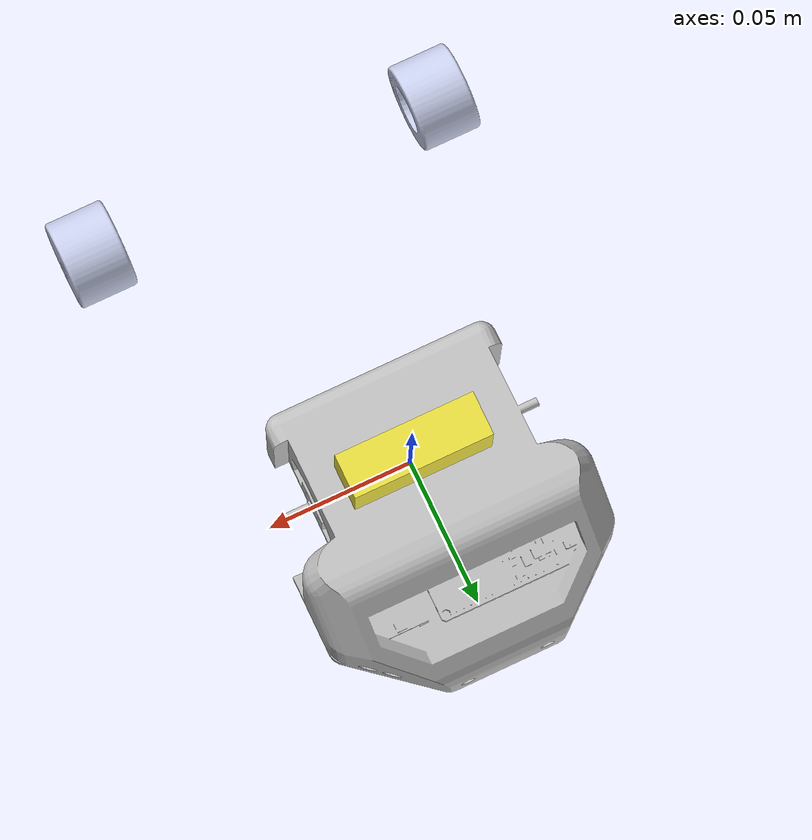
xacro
<?xml version="1.0"?>
<robot name="RMD1" xmlns:xacro="http://www.ros.org/wiki/xacro">
	<xacro:macro name="InerciaRueda">
	 <inertial>
		<origin
		xyz="1.9755E-05 -5.937E-05 0.010582"
		rpy="0 0 0" />
	   	<mass value="0.010874" />
		<inertia
		ixx="1.1208E-06"
		ixy="4.6507E-10"
		ixz="-7.7246E-10"
		iyy="1.1207E-06"
		iyz="-6.5341E-10"
		izz="1.5186E-06" />
	 </inertial>
	</xacro:macro>

  <!-- ::::::::::::::: ENLACES Y JUNTAS VISUALES DEL ROBOT :::::::::::::::-->
  <link
    name="base_link">
    <inertial>
      <!--origin
        xyz="0.00220064762445978 0.00632001835962821 0.0613684966384051" No funciona, se debe intercambiar el eje y por z -->
      <origin
        xyz="0.00220064762445978 -0.0613684966384051 0.00632001835962821"
        rpy="1.5708 0 0" />
      <mass
        value="0.187551651600364" />
      <inertia
        ixx="0.000236010414569773"
        ixy="-1.68515145672754E-09"
        ixz="1.38056969191708E-09"
        iyy="0.000507898725164958"
        iyz="-1.00879770741965E-05"
        izz="0.000308347840630502" />

    </inertial>
    <visual>
      <origin
        xyz="0 0 0"
        rpy="0 0 0" />
      <geometry>
        <mesh
          filename="package://RMD/meshes/base_link.STL" />
      </geometry>
      <material
        name="">
        <color
          rgba="0.752941176470588 0.752941176470588 0.752941176470588 1" />
      </material>
    </visual>
    <collision>
      <origin
        xyz="0 0 0"
        rpy="0 0 0" />
      <geometry>
        <mesh
          filename="package://RMD/meshes/base_link.STL" />
      </geometry>
    </collision>
  </link>
  <link
    name="Rueda_Izq">
    <xacro:InerciaRueda/>
    <visual>
      <origin
        xyz="0 0 0"
        rpy="0 0 0" />
      <geometry>
        <mesh
          filename="package://RMD/meshes/Rueda_Izq.STL" />
      </geometry>
      <material
        name="">
        <color
          rgba="0.79216 0.81961 0.93333 1" />
      </material>
    </visual>
    <collision>
      <origin
        xyz="0 0 0"
        rpy="0 0 0" />
      <geometry>
        <mesh
          filename="package://RMD/meshes/Rueda_Izq.STL" />
      </geometry>
    </collision>
  </link>
  <joint
    name="Motor_Izq"
    type="continuous">
    <origin
      xyz="-0.049569 -0.10759 -0.0043137"
      rpy="1.5708 -0.86735 -1.5708" />
    <parent
      link="base_link" />
    <child
      link="Rueda_Izq" />
    <axis
      xyz="0 0 1" />
    <dynamics
      damping="0.0001"
      friction="0.01" />
  </joint>
  <link
    name="Rueda_Der">
    <xacro:InerciaRueda/>
    <visual>
      <origin
        xyz="0 0 0"
        rpy="0 0 0" />
      <geometry>
        <mesh
          filename="package://RMD/meshes/Rueda_Der.STL" />
      </geometry>
      <material
        name="">
        <color
          rgba="0.79216 0.81961 0.93333 1" />
        <texture
          filename="package://RMD/textures/textura.jpg" />
      </material>
    </visual>
    <collision>
      <origin
        xyz="0 0 0"
        rpy="0 0 0" />
      <geometry>
        <mesh
          filename="package://RMD/meshes/Rueda_Der.STL" />
      </geometry>
    </collision>
  </link>
  <joint
    name="Motor_Der"
    type="continuous">
    <origin
      xyz="0.053971 -0.1076 -0.0044387"
      rpy="1.5708 -0.86667 1.5708" />
    <parent
      link="base_link" />
    <child
      link="Rueda_Der" />
    <axis
      xyz="0 0 -1" />
    <dynamics
      damping="0.0001"
      friction="0.01" />
  </joint>

<!--:::: SENSOR 1 ::::-->
<joint name="ultrasonic_joint" type="fixed">
  <origin xyz="0 0 0" rpy="0 0 0"/>
  <parent link="base_link"/>
  <child link="ultrasonic_sensor"/>
</joint>

<link name="ultrasonic_sensor">
  <inertial>
    <mass value="0.001"/>
    <origin xyz="0 0 0" rpy="0 0 0"/>
    <inertia ixx="0.000001" ixy="0.0" ixz="0.0" iyy="0.000001" iyz="0.0" izz="0.000001"/>
  </inertial>
  <collision>
    <origin xyz="0.002 0.005 0.05" rpy="0 0 0"/>
    <geometry>
      <box size="0.0475 0.015 0.02"/>
    </geometry>
  </collision>
  <visual>
    <origin xyz="0.002 0.005 0.05" rpy="0 0 0"/>
    <geometry>
      <box size="0.0475 0.015 0.02"/>
    </geometry>
  </visual>
  <gazebo reference="ultrasonic_sensor">
    <sensor type="sonar">
      <always_on>true</always_on>
      <update_rate>10.0</update_rate>
      <ray>
        <scan>
          <horizontal>
            <samples>1</samples>
            <resolution>1</resolution>
            <min_angle>0.1</min_angle>
            <max_angle>0.5</max_angle>
          </horizontal>
        </scan>
        <range>
          <min>0.02</min>
          <max>4.0</max>
          <resolution>0.001</resolution>
        </range>
      </ray>
      <plugin name="gazebo_ros_ultrasonic" filename="libgazebo_ros_range.so">
        <alwaysOn>true</alwaysOn>
        <updateRate>10.0</updateRate>
        <visualize>true</visualize>
        <rangeName>range</rangeName>
        <rangeNoise>0.01</rangeNoise>
        <rangeBias>0.0</rangeBias>
        <topicName>ultrasonic</topicName>
        <frameName>ultrasonic_frame</frameName>
      </plugin>
    </sensor>
  </gazebo>
</link>

 <!--:::: COLORES DEL MODELO ::::-->
  <gazebo reference="Rueda_Izq">
 	<material>Gazebo/Red</material>
  </gazebo>
  <gazebo reference="Rueda_Der">
	<material>Gazebo/Red</material>
  </gazebo>
  <gazebo reference="base_link">
	<material>Gazebo/CoM</material>
  </gazebo>

  <!--:::: DECLARACION DE NODOS DE CONTROL ::::-->
  <gazebo>
    <plugin name="rdif1" filename="libgazebo_ros_diff_drive.so">
      <rosDebugLevel>Debug</rosDebugLevel>
      <publishWheelTF>false</publishWheelTF>
      <robotNamespace>/1</robotNamespace>
      <publishTf>1</publishTf>
      <publishWheelJointState>false</publishWheelJointState>
      <alwaysOn>true</alwaysOn>
      <updateRate>100</updateRate>
      <leftJoint>Motor_Izq</leftJoint>
      <rightJoint>Motor_Der</rightJoint>
      <wheelSeparation>0.1244</wheelSeparation>
      <wheelDiameter>0.03</wheelDiameter>
      <broadcastTF>1</broadcastTF>
      <wheelTorque>0.1079</wheelTorque>
      <wheelAcceleration>1</wheelAcceleration>
      <commandTopic>cmd_vel1</commandTopic>
      <odometryFrame>odom1</odometryFrame>
      <odometryTopic>odom1</odometryTopic>
      <robotBaseFrame>base_link</robotBaseFrame>
    </plugin>
  </gazebo>
</robot>
